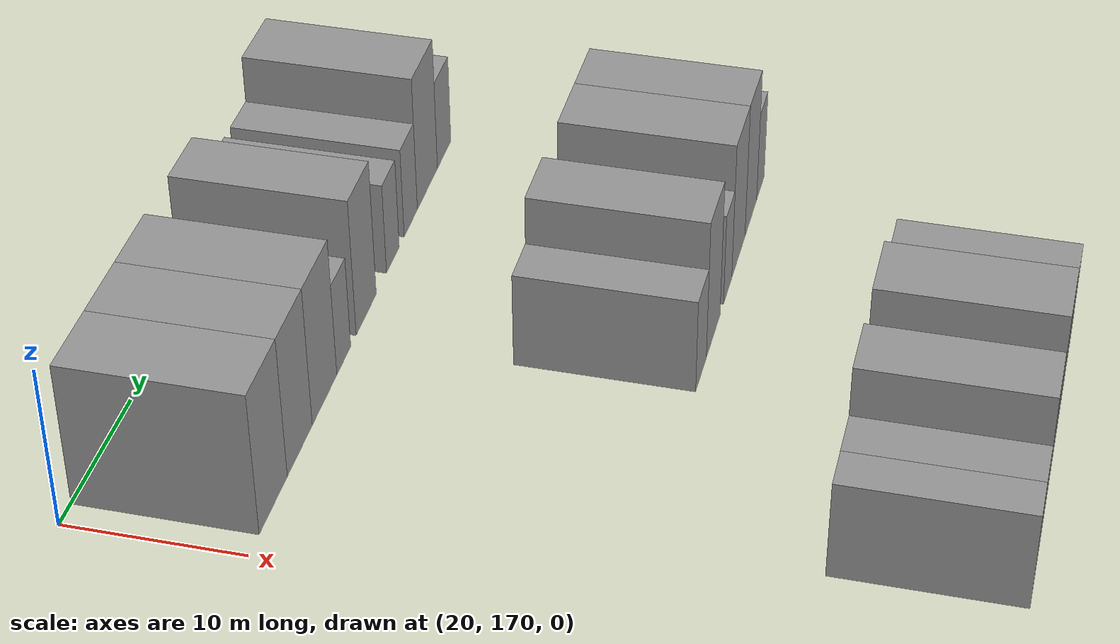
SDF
<sdf version="1.6">
 <world name="default">
  <model name="building_111">
   <static>1</static>
   <pose>25.0000 173.8417 0 0.000000 0.000000 0.000000</pose>
   <link name="link">
    <pose>0 0 4.50 0 0 0</pose>
    <collision name="collision"><geometry><box><size>10.0000 4.4700 9.0000</size></box></geometry></collision>
    <visual name="visual">
     <cast_shadows>0</cast_shadows>
     <geometry><box><size>10.0000 4.4700 9.0000</size></box></geometry>
     <material>
      <script>
       <uri>model://grey_wall/materials/scripts</uri>
       <uri>model://grey_wall/materials/textures</uri>
       <name>vrc/grey_wall</name>
      </script>
     </material>
    </visual>
   </link>
  </model>
  <model name="building_112">
   <static>1</static>
   <pose>25.0000 178.1558 0 0.000000 0.000000 0.000000</pose>
   <link name="link">
    <pose>0 0 4.50 0 0 0</pose>
    <collision name="collision"><geometry><box><size>10.0000 4.1581 9.0000</size></box></geometry></collision>
    <visual name="visual">
     <cast_shadows>0</cast_shadows>
     <geometry><box><size>10.0000 4.1581 9.0000</size></box></geometry>
     <material>
      <script>
       <uri>model://grey_wall/materials/scripts</uri>
       <uri>model://grey_wall/materials/textures</uri>
       <name>vrc/grey_wall</name>
      </script>
     </material>
    </visual>
   </link>
  </model>
  <model name="building_113">
   <static>1</static>
   <pose>25.0000 182.3740 0 0.000000 0.000000 0.000000</pose>
   <link name="link">
    <pose>0 0 4.50 0 0 0</pose>
    <collision name="collision"><geometry><box><size>10.0000 4.2785 9.0000</size></box></geometry></collision>
    <visual name="visual">
     <cast_shadows>0</cast_shadows>
     <geometry><box><size>10.0000 4.2785 9.0000</size></box></geometry>
     <material>
      <script>
       <uri>model://grey_wall/materials/scripts</uri>
       <uri>model://grey_wall/materials/textures</uri>
       <name>vrc/grey_wall</name>
      </script>
     </material>
    </visual>
   </link>
  </model>
  <model name="building_114">
   <static>1</static>
   <pose>25.0000 185.7671 0 0.000000 0.000000 0.000000</pose>
   <link name="link">
    <pose>0 0 3.00 0 0 0</pose>
    <collision name="collision"><geometry><box><size>10.0000 2.5076 6.0000</size></box></geometry></collision>
    <visual name="visual">
     <cast_shadows>0</cast_shadows>
     <geometry><box><size>10.0000 2.5076 6.0000</size></box></geometry>
     <material>
      <script>
       <uri>model://grey_wall/materials/scripts</uri>
       <uri>model://grey_wall/materials/textures</uri>
       <name>vrc/grey_wall</name>
      </script>
     </material>
    </visual>
   </link>
  </model>
  <model name="building_115">
   <static>1</static>
   <pose>25.0000 189.9140 0 0.000000 0.000000 0.000000</pose>
   <link name="link">
    <pose>0 0 4.50 0 0 0</pose>
    <collision name="collision"><geometry><box><size>10.0000 3.7862 9.0000</size></box></geometry></collision>
    <visual name="visual">
     <cast_shadows>0</cast_shadows>
     <geometry><box><size>10.0000 3.7862 9.0000</size></box></geometry>
     <material>
      <script>
       <uri>model://grey_wall/materials/scripts</uri>
       <uri>model://grey_wall/materials/textures</uri>
       <name>vrc/grey_wall</name>
      </script>
     </material>
    </visual>
   </link>
  </model>
  <model name="building_116">
   <static>1</static>
   <pose>25.0000 195.0749 0 0.000000 0.000000 0.000000</pose>
   <link name="link">
    <pose>0 0 3.00 0 0 0</pose>
    <collision name="collision"><geometry><box><size>10.0000 2.5357 6.0000</size></box></geometry></collision>
    <visual name="visual">
     <cast_shadows>0</cast_shadows>
     <geometry><box><size>10.0000 2.5357 6.0000</size></box></geometry>
     <material>
      <script>
       <uri>model://grey_wall/materials/scripts</uri>
       <uri>model://grey_wall/materials/textures</uri>
       <name>vrc/grey_wall</name>
      </script>
     </material>
    </visual>
   </link>
  </model>
  <model name="building_117">
   <static>1</static>
   <pose>25.0000 198.7033 0 0.000000 0.000000 0.000000</pose>
   <link name="link">
    <pose>0 0 3.00 0 0 0</pose>
    <collision name="collision"><geometry><box><size>10.0000 2.7210 6.0000</size></box></geometry></collision>
    <visual name="visual">
     <cast_shadows>0</cast_shadows>
     <geometry><box><size>10.0000 2.7210 6.0000</size></box></geometry>
     <material>
      <script>
       <uri>model://grey_wall/materials/scripts</uri>
       <uri>model://grey_wall/materials/textures</uri>
       <name>vrc/grey_wall</name>
      </script>
     </material>
    </visual>
   </link>
  </model>
  <model name="building_118">
   <static>1</static>
   <pose>25.0000 202.2008 0 0.000000 0.000000 0.000000</pose>
   <link name="link">
    <pose>0 0 4.50 0 0 0</pose>
    <collision name="collision"><geometry><box><size>10.0000 4.2741 9.0000</size></box></geometry></collision>
    <visual name="visual">
     <cast_shadows>0</cast_shadows>
     <geometry><box><size>10.0000 4.2741 9.0000</size></box></geometry>
     <material>
      <script>
       <uri>model://grey_wall/materials/scripts</uri>
       <uri>model://grey_wall/materials/textures</uri>
       <name>vrc/grey_wall</name>
      </script>
     </material>
    </visual>
   </link>
  </model>
  <model name="building_119">
   <static>1</static>
   <pose>25.0000 205.8192 0 0.000000 0.000000 0.000000</pose>
   <link name="link">
    <pose>0 0 3.00 0 0 0</pose>
    <collision name="collision"><geometry><box><size>10.0000 2.9627 6.0000</size></box></geometry></collision>
    <visual name="visual">
     <cast_shadows>0</cast_shadows>
     <geometry><box><size>10.0000 2.9627 6.0000</size></box></geometry>
     <material>
      <script>
       <uri>model://grey_wall/materials/scripts</uri>
       <uri>model://grey_wall/materials/textures</uri>
       <name>vrc/grey_wall</name>
      </script>
     </material>
    </visual>
   </link>
  </model>
  <model name="building_226">
   <static>1</static>
   <pose>44.0000 189.0030 0 0.000000 0.000000 0.000000</pose>
   <link name="link">
    <pose>0 0 3.00 0 0 0</pose>
    <collision name="collision"><geometry><box><size>10.0000 2.9060 6.0000</size></box></geometry></collision>
    <visual name="visual">
     <cast_shadows>0</cast_shadows>
     <geometry><box><size>10.0000 2.9060 6.0000</size></box></geometry>
     <material>
      <script>
       <uri>model://grey_wall/materials/scripts</uri>
       <uri>model://grey_wall/materials/textures</uri>
       <name>vrc/grey_wall</name>
      </script>
     </material>
    </visual>
   </link>
  </model>
  <model name="building_227">
   <static>1</static>
   <pose>44.0000 192.3925 0 0.000000 0.000000 0.000000</pose>
   <link name="link">
    <pose>0 0 4.50 0 0 0</pose>
    <collision name="collision"><geometry><box><size>10.0000 3.8730 9.0000</size></box></geometry></collision>
    <visual name="visual">
     <cast_shadows>0</cast_shadows>
     <geometry><box><size>10.0000 3.8730 9.0000</size></box></geometry>
     <material>
      <script>
       <uri>model://grey_wall/materials/scripts</uri>
       <uri>model://grey_wall/materials/textures</uri>
       <name>vrc/grey_wall</name>
      </script>
     </material>
    </visual>
   </link>
  </model>
  <model name="building_228">
   <static>1</static>
   <pose>44.0000 196.5464 0 0.000000 0.000000 0.000000</pose>
   <link name="link">
    <pose>0 0 3.00 0 0 0</pose>
    <collision name="collision"><geometry><box><size>10.0000 2.4349 6.0000</size></box></geometry></collision>
    <visual name="visual">
     <cast_shadows>0</cast_shadows>
     <geometry><box><size>10.0000 2.4349 6.0000</size></box></geometry>
     <material>
      <script>
       <uri>model://grey_wall/materials/scripts</uri>
       <uri>model://grey_wall/materials/textures</uri>
       <name>vrc/grey_wall</name>
      </script>
     </material>
    </visual>
   </link>
  </model>
  <model name="building_229">
   <static>1</static>
   <pose>44.0000 199.7722 0 0.000000 0.000000 0.000000</pose>
   <link name="link">
    <pose>0 0 4.50 0 0 0</pose>
    <collision name="collision"><geometry><box><size>10.0000 4.0166 9.0000</size></box></geometry></collision>
    <visual name="visual">
     <cast_shadows>0</cast_shadows>
     <geometry><box><size>10.0000 4.0166 9.0000</size></box></geometry>
     <material>
      <script>
       <uri>model://grey_wall/materials/scripts</uri>
       <uri>model://grey_wall/materials/textures</uri>
       <name>vrc/grey_wall</name>
      </script>
     </material>
    </visual>
   </link>
  </model>
  <model name="building_230">
   <static>1</static>
   <pose>44.0000 203.6360 0 0.000000 0.000000 0.000000</pose>
   <link name="link">
    <pose>0 0 4.50 0 0 0</pose>
    <collision name="collision"><geometry><box><size>10.0000 3.7110 9.0000</size></box></geometry></collision>
    <visual name="visual">
     <cast_shadows>0</cast_shadows>
     <geometry><box><size>10.0000 3.7110 9.0000</size></box></geometry>
     <material>
      <script>
       <uri>model://grey_wall/materials/scripts</uri>
       <uri>model://grey_wall/materials/textures</uri>
       <name>vrc/grey_wall</name>
      </script>
     </material>
    </visual>
   </link>
  </model>
  <model name="building_231">
   <static>1</static>
   <pose>44.0000 206.7083 0 0.000000 0.000000 0.000000</pose>
   <link name="link">
    <pose>0 0 3.00 0 0 0</pose>
    <collision name="collision"><geometry><box><size>10.0000 2.4336 6.0000</size></box></geometry></collision>
    <visual name="visual">
     <cast_shadows>0</cast_shadows>
     <geometry><box><size>10.0000 2.4336 6.0000</size></box></geometry>
     <material>
      <script>
       <uri>model://grey_wall/materials/scripts</uri>
       <uri>model://grey_wall/materials/textures</uri>
       <name>vrc/grey_wall</name>
      </script>
     </material>
    </visual>
   </link>
  </model>
  <model name="building_339">
   <static>1</static>
   <pose>63.0000 176.3988 0 0.000000 0.000000 0.000000</pose>
   <link name="link">
    <pose>0 0 3.00 0 0 0</pose>
    <collision name="collision"><geometry><box><size>10.0000 2.4951 6.0000</size></box></geometry></collision>
    <visual name="visual">
     <cast_shadows>0</cast_shadows>
     <geometry><box><size>10.0000 2.4951 6.0000</size></box></geometry>
     <material>
      <script>
       <uri>model://grey_wall/materials/scripts</uri>
       <uri>model://grey_wall/materials/textures</uri>
       <name>vrc/grey_wall</name>
      </script>
     </material>
    </visual>
   </link>
  </model>
  <model name="building_340">
   <static>1</static>
   <pose>63.0000 179.0027 0 0.000000 0.000000 0.000000</pose>
   <link name="link">
    <pose>0 0 3.00 0 0 0</pose>
    <collision name="collision"><geometry><box><size>10.0000 2.7127 6.0000</size></box></geometry></collision>
    <visual name="visual">
     <cast_shadows>0</cast_shadows>
     <geometry><box><size>10.0000 2.7127 6.0000</size></box></geometry>
     <material>
      <script>
       <uri>model://grey_wall/materials/scripts</uri>
       <uri>model://grey_wall/materials/textures</uri>
       <name>vrc/grey_wall</name>
      </script>
     </material>
    </visual>
   </link>
  </model>
  <model name="building_341">
   <static>1</static>
   <pose>63.0000 182.1616 0 0.000000 0.000000 0.000000</pose>
   <link name="link">
    <pose>0 0 4.50 0 0 0</pose>
    <collision name="collision"><geometry><box><size>10.0000 3.6051 9.0000</size></box></geometry></collision>
    <visual name="visual">
     <cast_shadows>0</cast_shadows>
     <geometry><box><size>10.0000 3.6051 9.0000</size></box></geometry>
     <material>
      <script>
       <uri>model://grey_wall/materials/scripts</uri>
       <uri>model://grey_wall/materials/textures</uri>
       <name>vrc/grey_wall</name>
      </script>
     </material>
    </visual>
   </link>
  </model>
  <model name="building_342">
   <static>1</static>
   <pose>63.0000 185.4040 0 0.000000 0.000000 0.000000</pose>
   <link name="link">
    <pose>0 0 3.00 0 0 0</pose>
    <collision name="collision"><geometry><box><size>10.0000 2.8797 6.0000</size></box></geometry></collision>
    <visual name="visual">
     <cast_shadows>0</cast_shadows>
     <geometry><box><size>10.0000 2.8797 6.0000</size></box></geometry>
     <material>
      <script>
       <uri>model://grey_wall/materials/scripts</uri>
       <uri>model://grey_wall/materials/textures</uri>
       <name>vrc/grey_wall</name>
      </script>
     </material>
    </visual>
   </link>
  </model>
  <model name="building_343">
   <static>1</static>
   <pose>63.0000 188.9209 0 0.000000 0.000000 0.000000</pose>
   <link name="link">
    <pose>0 0 4.50 0 0 0</pose>
    <collision name="collision"><geometry><box><size>10.0000 4.1540 9.0000</size></box></geometry></collision>
    <visual name="visual">
     <cast_shadows>0</cast_shadows>
     <geometry><box><size>10.0000 4.1540 9.0000</size></box></geometry>
     <material>
      <script>
       <uri>model://grey_wall/materials/scripts</uri>
       <uri>model://grey_wall/materials/textures</uri>
       <name>vrc/grey_wall</name>
      </script>
     </material>
    </visual>
   </link>
  </model>
  <model name="building_344">
   <static>1</static>
   <pose>63.0000 192.2088 0 0.000000 0.000000 0.000000</pose>
   <link name="link">
    <pose>0 0 3.00 0 0 0</pose>
    <collision name="collision"><geometry><box><size>10.0000 2.4218 6.0000</size></box></geometry></collision>
    <visual name="visual">
     <cast_shadows>0</cast_shadows>
     <geometry><box><size>10.0000 2.4218 6.0000</size></box></geometry>
     <material>
      <script>
       <uri>model://grey_wall/materials/scripts</uri>
       <uri>model://grey_wall/materials/textures</uri>
       <name>vrc/grey_wall</name>
      </script>
     </material>
    </visual>
   </link>
  </model>
  <model name="building_345">
   <static>1</static>
   <pose>63.0000 195.8357 0 0.000000 0.000000 0.000000</pose>
   <link name="link">
    <pose>0 0 3.00 0 0 0</pose>
    <collision name="collision"><geometry><box><size>10.0000 2.8319 6.0000</size></box></geometry></collision>
    <visual name="visual">
     <cast_shadows>0</cast_shadows>
     <geometry><box><size>10.0000 2.8319 6.0000</size></box></geometry>
     <material>
      <script>
       <uri>model://grey_wall/materials/scripts</uri>
       <uri>model://grey_wall/materials/textures</uri>
       <name>vrc/grey_wall</name>
      </script>
     </material>
    </visual>
   </link>
  </model>
 </world>
</sdf>
